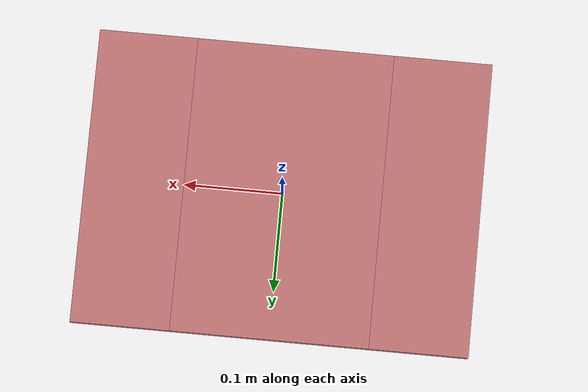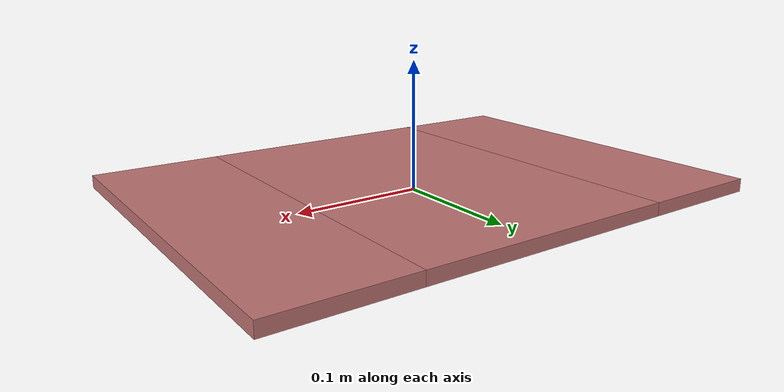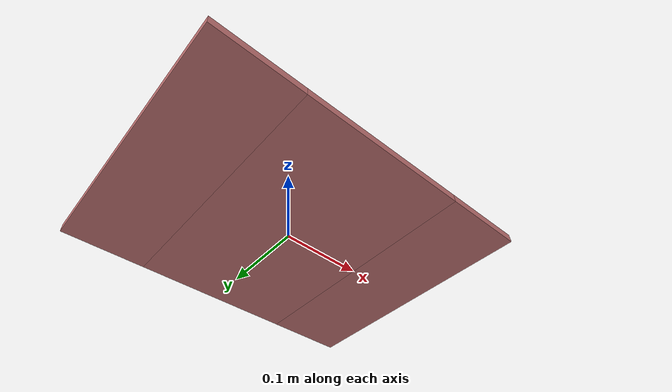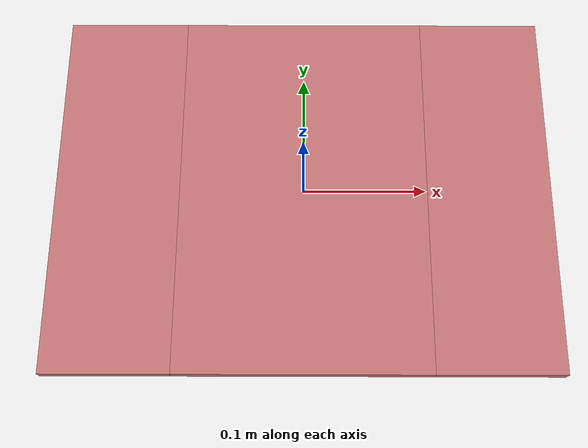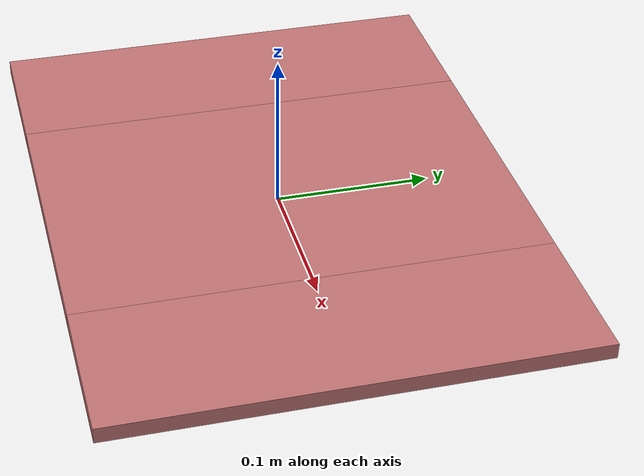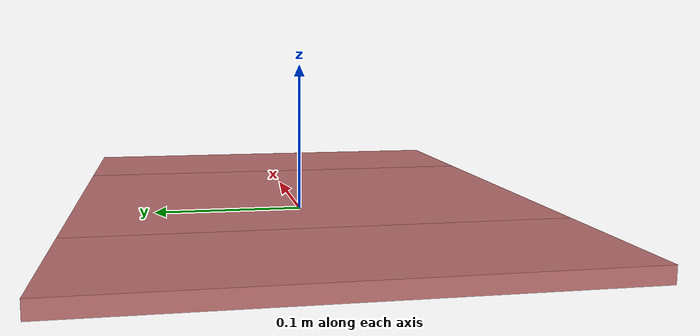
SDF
<?xml version='1.0'?>
<sdf version='1.7'>
  <model name='placemat'>
    <link name='base_link'>
      <inertial>
        <mass>1</mass>
        <inertia>
          <ixx>0.166667</ixx>
          <ixy>0</ixy>
          <ixz>0</ixz>
          <iyy>0.166667</iyy>
          <iyz>0</iyz>
          <izz>0.166667</izz>
        </inertia>
        <pose>0 0 0 0 -0 0</pose>
      </inertial>
      <pose>0 0 0 0 -0 0</pose>
      <visual name='visual'>
        <pose>0 0 0.005 0 -0 0</pose>
        <geometry>
            <box>
                <size>0.2 0.3 0.01</size>
            </box>
        </geometry>
        <material>
          <diffuse>0.750 0.450 0.450 1</diffuse>
        </material>
      </visual>
      <collision name='collision'>
        <pose>0 0 0.005 0 -0 0</pose>
        <geometry>
          <box>
              <size>0.2 0.3 0.01</size>
          </box>
        </geometry>
      </collision>
    </link>
    <link name='leftside'>
      <inertial>
        <mass>1</mass>
        <inertia>
          <ixx>0.166667</ixx>
          <ixy>0</ixy>
          <ixz>0</ixz>
          <iyy>0.166667</iyy>
          <iyz>0</iyz>
          <izz>0.166667</izz>
        </inertia>
        <pose>0 0 0 0 -0 0</pose>
      </inertial>
      <pose>-0.15 0 0.005 0 -0 0</pose>
      <visual name='visual'>
        <pose>0 0 0.0 0 -0 0</pose>
        <geometry>
            <box>
                <size>0.1 0.3 0.01</size>
            </box>
        </geometry>
        <material>
          <diffuse>0.750 0.450 0.450 1</diffuse>
        </material>
      </visual>
      <collision name='collision'>
        <pose>0 0 0.0 0 -0 0</pose>
        <geometry>
          <box>
              <size>0.1 0.3 0.01</size>
          </box>
        </geometry>
      </collision>
    </link>
    <link name='rightside'>
      <inertial>
        <mass>1</mass>
        <inertia>
          <ixx>0.166667</ixx>
          <ixy>0</ixy>
          <ixz>0</ixz>
          <iyy>0.166667</iyy>
          <iyz>0</iyz>
          <izz>0.166667</izz>
        </inertia>
        <pose>0 0 0 0 -0 0</pose>
      </inertial>
      <pose>0.15 0 0.005 0 -0 0</pose>
      <visual name='visual'>
        <pose>0 0 0 0 -0 0</pose>
        <geometry>
            <box>
                <size>0.1 0.3 0.01</size>
            </box>
        </geometry>
        <material>
          <diffuse>0.750 0.450 0.450 1</diffuse>
        </material>
      </visual>
      <collision name='collision'>
        <pose>0 0 0 0 -0 0</pose>
        <geometry>
          <box>
              <size>0.1 0.3 0.01</size>
          </box>
        </geometry>
      </collision>
    </link>
    <joint name='jointleft' type='fixed'>
      <parent>base_link</parent>
      <child>leftside</child>
      <pose>0 0 0 0 -0 0</pose>
    </joint>
    <joint name='jointright' type='fixed'>
      <parent>base_link</parent>
      <child>rightside</child>
      <pose>0 0 0 0 -0 0</pose>
    </joint>
  </model>
</sdf>
